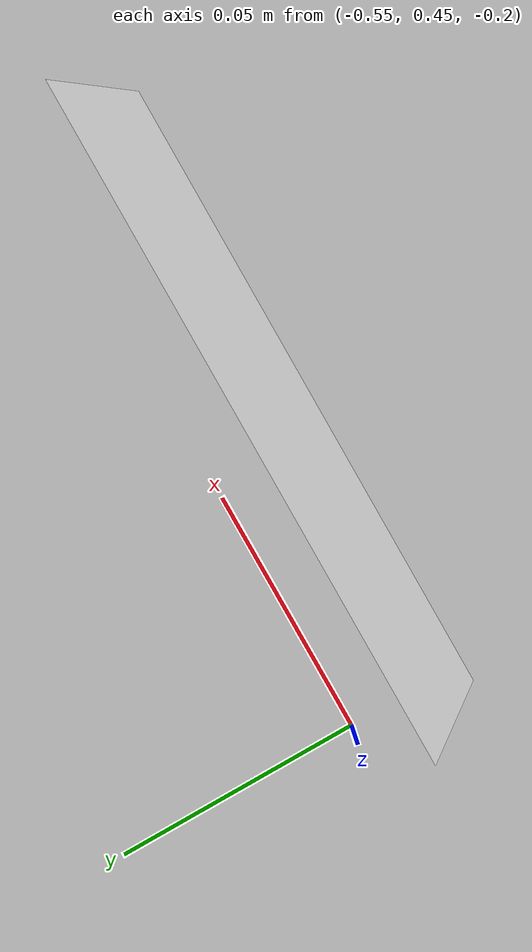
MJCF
<mujoco model="original-36">
  <default>
    <default class="visual">
      <geom group="2" type="mesh" contype="0" conaffinity="0"/>
    </default>
    <default class="collision">
      <geom group="3" type="mesh"/>
    </default>
  </default>
  <asset>
    <material name="material_0_0" specular="0.06666666666666667" shininess="0.03" rgba="0.8 0.8 0.8 1"/>
    <mesh file="original-36.obj"/>
  </asset>
  <worldbody>
    <body name="original-36">
      <geom material="material_0_0" mesh="original-36" class="visual"/>
      <geom mesh="original-36" class="collision"/>
    </body>
  </worldbody>
</mujoco>
